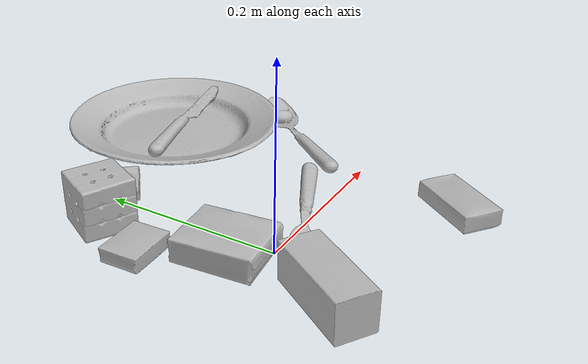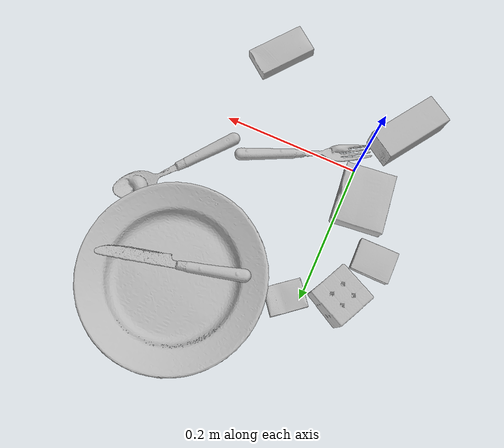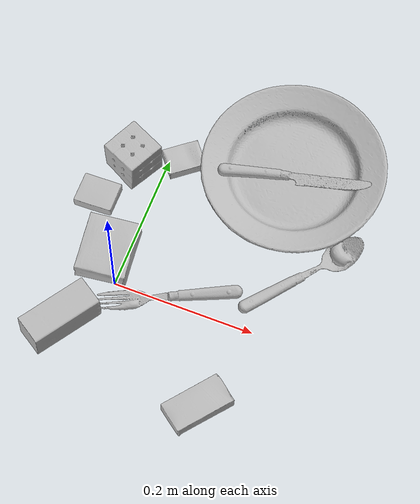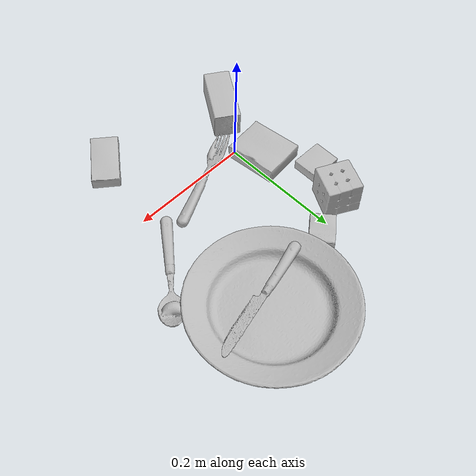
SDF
<sdf version="1.4">
  <world name="default">
    <light name="light1" type="point">
      <pose>0 0 1 0 0 0</pose>
      <diffuse>3 3 3 1</diffuse>
      <specular>3 3 3 1</specular>
    </light>
    <light name="light2" type="point">
      <pose>0 0.5 2 0 0 0</pose>
      <diffuse>1 1 1 1</diffuse>
      <specular>1 1 1 1</specular>
    </light>
    <light name="light3" type="point">
      <pose>0 0.5 2 0 0 0</pose>
      <diffuse>3 3 3 1</diffuse>
      <specular>3 3 3 1</specular>
    </light>
    <scene>
      <ambient>0.7 0.7 0.7</ambient>
    </scene>
    <model name="box11">
      <link name="link_box11">
        <collision name="default">
          <geometry>
            <mesh>
              <uri>model://gelatin_box/collision_meshes/collision.obj</uri>
              <scale>1.0 1.0 1.0</scale>
            </mesh>
          </geometry>
          <surface>
            <friction>
              <ode>
                <mu>0.5</mu>
                <mu2>0.5</mu2>
              </ode>
            </friction>
          <contact>
        <ode>
            <max_vel>0</max_vel>
            <min_depth>0.0001</min_depth>
            <kp>1e8</kp>
        </ode>
    </contact></surface>
        </collision>
        <visual name="default">
          <geometry>
            <mesh>
              <uri>model://gelatin_box/visual_meshes/visual.dae</uri>
              <scale>1.0 1.0 1.0</scale>
            </mesh>
          </geometry>
        </visual>
        <inertial>
          <mass>0.25029057264328003</mass>
          <pose>0.0004319618456065655 0.00011156871914863586 -0.0003640321083366871 -0.0010503719874808634 -0.004755820553863559 0.01644055760983946</pose>
          <inertia>
            <ixx>0.00017668474</ixx>
            <iyy>0.000126205</iyy>
            <izz>0.00026895347</izz>
            <ixy>0</ixy>
            <ixz>0</ixz>
            <iyz>0</iyz>
          </inertia>
        </inertial>
      </link>
      <pose>-0.026080112904310226 0.03805825114250183 0.015168309211730957 0.005597427125945539 -0.007304493594973373 0.10441498862886378</pose>
    </model>
    <model name="box12">
      <link name="link_box12">
        <collision name="default">
          <geometry>
            <mesh>
              <uri>model://rubiks_cube/collision_meshes/collision.obj</uri>
              <scale>1.0 1.0 1.0</scale>
            </mesh>
          </geometry>
          <surface>
            <friction>
              <ode>
                <mu>0.5</mu>
                <mu2>0.5</mu2>
              </ode>
            </friction>
          <contact>
        <ode>
            <max_vel>0</max_vel>
            <min_depth>0.0001</min_depth>
            <kp>1e8</kp>
        </ode>
    </contact></surface>
        </collision>
        <visual name="default">
          <geometry>
            <mesh>
              <uri>model://rubiks_cube/visual_meshes/visual.dae</uri>
              <scale>1.0 1.0 1.0</scale>
            </mesh>
          </geometry>
        </visual>
        <inertial>
          <mass>0.21638615429401398</mass>
          <pose>2.6721043468569405e-05 5.2569666877388954e-05 -7.264316536748083e-06 -0.054671974778446215 -0.0981397652693683 -0.03445575269454635</pose>
          <inertia>
            <ixx>0.00011956789</ixx>
            <iyy>0.00011901029</iyy>
            <izz>0.00012055871</izz>
            <ixy>0</ixy>
            <ixz>0</ixz>
            <iyz>0</iyz>
          </inertia>
        </inertial>
      </link>
      <pose>-0.044869448989629745 0.17838244140148163 0.028678974136710167 -3.8209379170929165e-06 -1.0706059679305897e-06 -0.45234510076555196</pose>
    </model>
    <model name="box13">
      <link name="link_box13">
        <collision name="default">
          <geometry>
            <mesh>
              <uri>model://pudding_box/collision_meshes/collision.obj</uri>
              <scale>0.5 0.5 0.5</scale>
            </mesh>
          </geometry>
          <surface>
            <friction>
              <ode>
                <mu>0.5</mu>
                <mu2>0.5</mu2>
              </ode>
            </friction>
          <contact>
        <ode>
            <max_vel>0</max_vel>
            <min_depth>0.0001</min_depth>
            <kp>1e8</kp>
        </ode>
    </contact></surface>
        </collision>
        <visual name="default">
          <geometry>
            <mesh>
              <uri>model://pudding_box/visual_meshes/visual.dae</uri>
              <scale>0.5 0.5 0.5</scale>
            </mesh>
          </geometry>
        </visual>
        <inertial>
          <mass>0.024692855775356293</mass>
          <pose>0.00024474109522998333 0.00040339428232982755 -0.0002594413817860186 0.005213102294063647 -0.006603794537377036 0.020079827031592012</pose>
          <inertia>
            <ixx>6.9785e-06</ixx>
            <iyy>4.695185e-06</iyy>
            <izz>1.030558e-05</izz>
            <ixy>0</ixy>
            <ixz>0</ixz>
            <iyz>0</iyz>
          </inertia>
        </inertial>
      </link>
      <pose>-0.07205529510974884 0.11269613355398178 0.009862908162176609 0.02234960907313032 -0.011391118535772219 -1.5620301112408437</pose>
    </model>
    <model name="box21">
      <link name="link_box21">
        <collision name="default">
          <geometry>
            <mesh>
              <uri>model://wood_block/collision_meshes/collision.obj</uri>
              <scale>0.5 0.5 0.5</scale>
            </mesh>
          </geometry>
          <surface>
            <friction>
              <ode>
                <mu>0.5</mu>
                <mu2>0.5</mu2>
              </ode>
            </friction>
          <contact>
        <ode>
            <max_vel>0</max_vel>
            <min_depth>0.0001</min_depth>
            <kp>1e8</kp>
        </ode>
    </contact></surface>
        </collision>
        <visual name="default">
          <geometry>
            <mesh>
              <uri>model://wood_block/visual_meshes/visual.dae</uri>
              <scale>0.5 0.5 0.5</scale>
            </mesh>
          </geometry>
        </visual>
        <inertial>
          <mass>0.2621258497238159</mass>
          <pose>-2.9066577553749084e-06 -0.000285404734313488 0.00013204291462898254 -0.05220799390803197 -0.005192696360797016 -0.006861376940793837</pose>
          <inertia>
            <ixx>8.7691005e-05</ixx>
            <iyy>0.00027701593</iyy>
            <izz>0.00027597975</izz>
            <ixy>0</ixy>
            <ixz>0</ixz>
            <iyz>0</iyz>
          </inertia>
        </inertial>
      </link>
      <pose>-0.046285174787044525 -0.07871643453836441 0.022629251703619957 -0.005208363576038442 0.005718738863512696 0.9917267963419593</pose>
    </model>
    <model name="box22">
      <link name="link_box22">
        <collision name="default">
          <geometry>
            <mesh>
              <uri>model://cracker_box/collision_meshes/collision.obj</uri>
              <scale>0.25 0.25 0.25</scale>
            </mesh>
          </geometry>
          <surface>
            <friction>
              <ode>
                <mu>0.5</mu>
                <mu2>0.5</mu2>
              </ode>
            </friction>
          <contact>
        <ode>
            <max_vel>0</max_vel>
            <min_depth>0.0001</min_depth>
            <kp>1e8</kp>
        </ode>
    </contact></surface>
        </collision>
        <visual name="default">
          <geometry>
            <mesh>
              <uri>model://cracker_box/visual_meshes/visual.dae</uri>
              <scale>0.25 0.25 0.25</scale>
            </mesh>
          </geometry>
        </visual>
        <inertial>
          <mass>0.04544714838266373</mass>
          <pose>0.0002366049593547359 6.358561950037256e-05 -0.0004257383698131889 -0.0003162075981767565 -0.011106493326025165 0.0025467940711340945</pose>
          <inertia>
            <ixx>7.224829e-06</ixx>
            <iyy>1.1929612e-05</iyy>
            <izz>1.702465e-05</izz>
            <ixy>0</ixy>
            <ixz>0</ixz>
            <iyz>0</iyz>
          </inertia>
        </inertial>
      </link>
      <pose>0.01881142146885395 0.20699460804462433 0.009120447561144829 -0.01178794377784621 -0.0073672007906146345 -2.45929176587096</pose>
    </model>
    <model name="box23">
      <link name="link_box23">
        <collision name="default">
          <geometry>
            <mesh>
              <uri>model://sugar_box/collision_meshes/collision.obj</uri>
              <scale>0.5 0.5 0.5</scale>
            </mesh>
          </geometry>
          <surface>
            <friction>
              <ode>
                <mu>0.5</mu>
                <mu2>0.5</mu2>
              </ode>
            </friction>
          <contact>
        <ode>
            <max_vel>0</max_vel>
            <min_depth>0.0001</min_depth>
            <kp>1e8</kp>
        </ode>
    </contact></surface>
        </collision>
        <visual name="default">
          <geometry>
            <mesh>
              <uri>model://sugar_box/visual_meshes/visual.dae</uri>
              <scale>0.5 0.5 0.5</scale>
            </mesh>
          </geometry>
        </visual>
        <inertial>
          <mass>0.08974423259496689</mass>
          <pose>0.0005171863595023751 1.924554817378521e-05 -0.00018182402709499002 -0.00040462647498757867 0.0010506636387592515 0.0026153785559760484</pose>
          <inertia>
            <ixx>1.869366e-05</ixx>
            <iyy>6.0421757e-05</iyy>
            <izz>7.233205e-05</izz>
            <ixy>0</ixy>
            <ixz>0</ixz>
            <iyz>0</iyz>
          </inertia>
        </inertial>
      </link>
      <pose>0.17060989141464233 -0.1252448409795761 0.011399305425584316 0.0007754232028051322 -0.02343332502198528 -2.234652793826484</pose>
    </model>
    <model name="plate1">
      <link name="link_plate1">
        <collision name="default">
          <geometry>
            <mesh>
              <uri>model://plate/collision_meshes/collision.obj</uri>
              <scale>1.0 1.0 1.0</scale>
            </mesh>
          </geometry>
          <surface>
            <friction>
              <ode>
                <mu>0.5</mu>
                <mu2>0.5</mu2>
              </ode>
            </friction>
          <contact>
        <ode>
            <max_vel>0</max_vel>
            <min_depth>0.0001</min_depth>
            <kp>1e8</kp>
        </ode>
    </contact></surface>
        </collision>
        <visual name="default">
          <geometry>
            <mesh>
              <uri>model://plate/visual_meshes/visual.dae</uri>
              <scale>1.0 1.0 1.0</scale>
            </mesh>
          </geometry>
        </visual>
        <inertial>
          <mass>0.25075921416282654</mass>
          <pose>-0.0006044597248546779 0.00027825814322568476 -0.0010562010575085878 0.0022187872861569474 -0.003225478732834207 0.4526086398584511</pose>
          <inertia>
            <ixx>0.0011730565</ixx>
            <iyy>0.0011618367</iyy>
            <izz>0.0022943232</izz>
            <ixy>0</ixy>
            <ixz>0</ixz>
            <iyz>0</iyz>
          </inertia>
        </inertial>
      </link>
      <pose>0.16885873675346375 0.24479267001152039 0.013733000494539738 1.3730709041748441e-08 -4.164004300334857e-08 0.46383470249460185</pose>
    </model>
    <model name="silverware1">
      <link name="link_silverware1">
        <collision name="default">
          <geometry>
            <mesh>
              <uri>model://spoon/collision_meshes/collision.obj</uri>
              <scale>1.0 1.0 1.0</scale>
            </mesh>
          </geometry>
          <surface>
            <friction>
              <ode>
                <mu>0.5</mu>
                <mu2>0.5</mu2>
              </ode>
            </friction>
          <contact>
        <ode>
            <max_vel>0</max_vel>
            <min_depth>0.0001</min_depth>
            <kp>1e8</kp>
        </ode>
    </contact></surface>
        </collision>
        <visual name="default">
          <geometry>
            <mesh>
              <uri>model://spoon/visual_meshes/visual.dae</uri>
              <scale>1.0 1.0 1.0</scale>
            </mesh>
          </geometry>
        </visual>
        <inertial>
          <mass>0.036317918449640274</mass>
          <pose>-0.005526306107640266 -0.0016034167492762208 -0.0007271648501046002 0.03521625205726148 -0.039065835985121374 0.0061506181118877856</pose>
          <inertia>
            <ixx>2.0200612e-06</ixx>
            <iyy>0.00013818844</iyy>
            <izz>0.00013918467</izz>
            <ixy>0</ixy>
            <ixz>0</ixz>
            <iyz>0</iyz>
          </inertia>
        </inertial>
      </link>
      <pose>0.23276422917842865 0.10074526071548462 0.008385262452065945 0.0067316922959665525 0.026893008919829556 0.8923897511489144</pose>
    </model>
    <model name="silverware2">
      <link name="link_silverware2">
        <collision name="default">
          <geometry>
            <mesh>
              <uri>model://knife/collision_meshes/collision.obj</uri>
              <scale>1.0 1.0 1.0</scale>
            </mesh>
          </geometry>
          <surface>
            <friction>
              <ode>
                <mu>0.5</mu>
                <mu2>0.5</mu2>
              </ode>
            </friction>
          <contact>
        <ode>
            <max_vel>0</max_vel>
            <min_depth>0.0001</min_depth>
            <kp>1e8</kp>
        </ode>
    </contact></surface>
        </collision>
        <visual name="default">
          <geometry>
            <mesh>
              <uri>model://knife/visual_meshes/visual.dae</uri>
              <scale>1.0 1.0 1.0</scale>
            </mesh>
          </geometry>
        </visual>
        <inertial>
          <mass>0.03166225552558899</mass>
          <pose>-0.02378525584936142 0.0015275123296305537 5.0620161346159875e-05 0.07305183970819301 0.01724842094470774 -0.007409827313526415</pose>
          <inertia>
            <ixx>8.9870355e-07</ixx>
            <iyy>0.00012164128</iyy>
            <izz>0.00012193073</izz>
            <ixy>0</ixy>
            <ixz>0</ixz>
            <iyz>0</iyz>
          </inertia>
        </inertial>
      </link>
      <pose>0.1755913347005844 0.22791609168052673 0.024753564968705177 0.0033499695049098535 -1.4626459647479707e-05 0.24648212210280324</pose>
    </model>
    <model name="silverware3">
      <link name="link_silverware3">
        <collision name="default">
          <geometry>
            <mesh>
              <uri>model://fork/collision_meshes/collision.obj</uri>
              <scale>1.0 1.0 1.0</scale>
            </mesh>
          </geometry>
          <surface>
            <friction>
              <ode>
                <mu>0.5</mu>
                <mu2>0.5</mu2>
              </ode>
            </friction>
          <contact>
        <ode>
            <max_vel>0</max_vel>
            <min_depth>0.0001</min_depth>
            <kp>1e8</kp>
        </ode>
    </contact></surface>
        </collision>
        <visual name="default">
          <geometry>
            <mesh>
              <uri>model://fork/visual_meshes/visual.dae</uri>
              <scale>1.0 1.0 1.0</scale>
            </mesh>
          </geometry>
        </visual>
        <inertial>
          <mass>0.03018845245242119</mass>
          <pose>-0.029570050537586212 0.00046588227269239724 0.00032188609475269914 -0.013551782414775644 -0.010977841906558662 0.014453907874592884</pose>
          <inertia>
            <ixx>1.0582761e-06</ixx>
            <iyy>7.881335e-05</iyy>
            <izz>7.928668e-05</izz>
            <ixy>0</ixy>
            <ixz>0</ixz>
            <iyz>0</iyz>
          </inertia>
        </inertial>
      </link>
      <pose>0.07819484919309616 0.007939674891531467 0.005753549747169018 -0.18958689500258635 0.0240677874200611 -2.7033523733324194</pose>
    </model>
  <physics type="ode">
      <max_contacts>50</max_contacts>
      <ode>
        <solver>
          <type>quick</type>
          <iters>75</iters>
        </solver>
        <constraints>
          <contact_max_correcting_vel>0</contact_max_correcting_vel>
          <contact_surface_layer>0</contact_surface_layer>
        </constraints>
      </ode>
    </physics></world>
</sdf>
